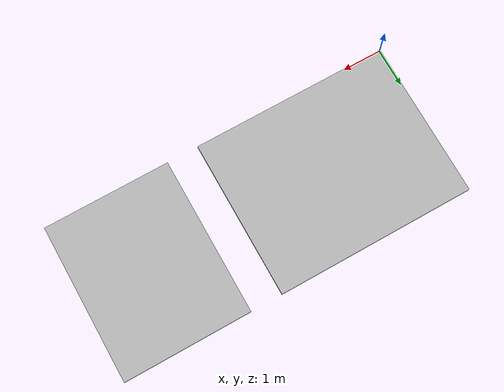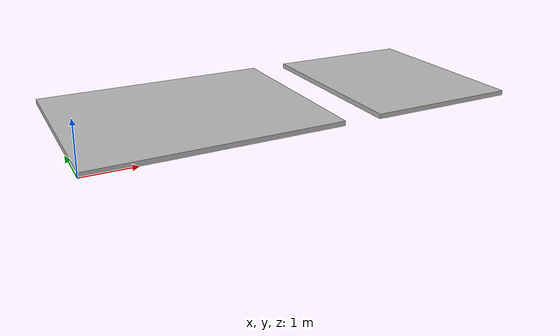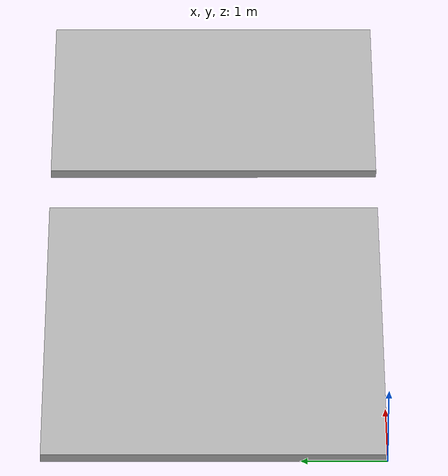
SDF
<?xml version="1.0"?>
<sdf version="1.6">
    <model name="gap_80cm">
      <static>true</static>
      <link name="body">
        <visual name="visual">
          <geometry>
            <mesh>
                <uri>meshes/gap_80cm.stl</uri>
            </mesh>
          </geometry>
        </visual>
        <collision name="collision">
          <geometry>
            <mesh>
                <uri>meshes/gap_80cm.stl</uri>
            </mesh>
          </geometry>
          <surface>
            <friction>
              <ode>
                <mu>100</mu>
                <mu2>100</mu2>
              </ode>
            </friction>
          </surface>
        </collision>
      </link>
    </model>
</sdf>
